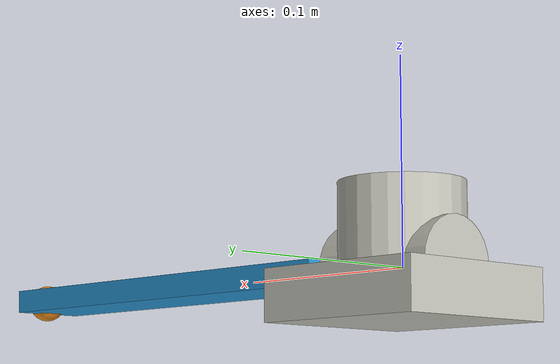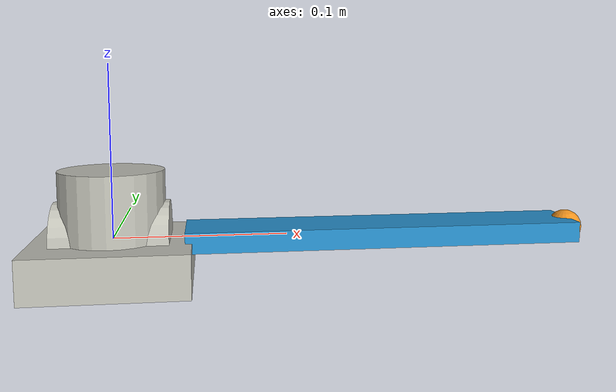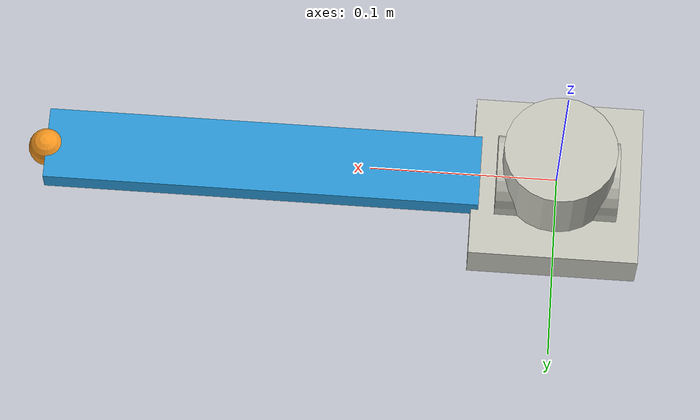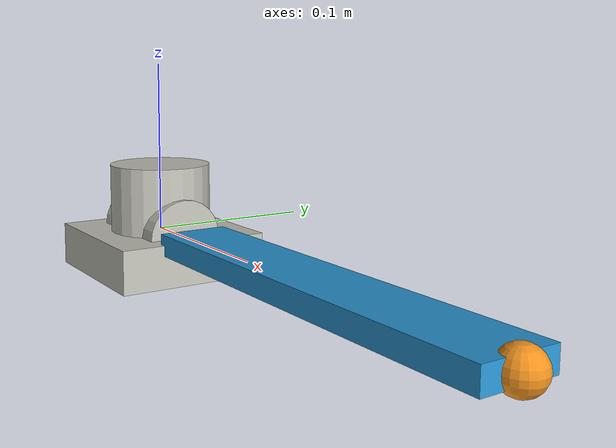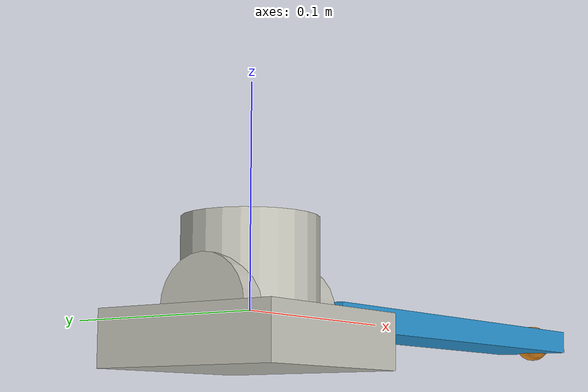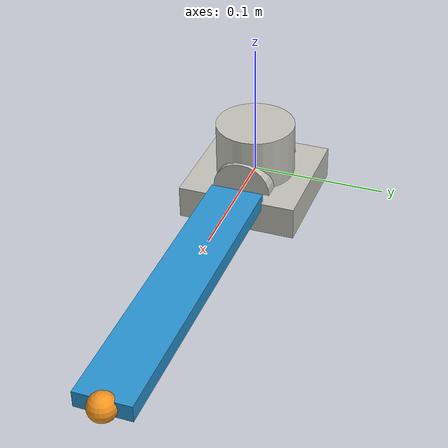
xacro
<?xml version="1.0"?>
<robot xmlns:xacro="http://www.ros.org/wiki/xacro" name="alphaf_p1_so101_one_link">
  <xacro:property name="L1_effective" value="0.274123"/>
  <xacro:property name="flexible_bar_length" value="0.233"/>
  <xacro:property name="bar_width" value="0.040"/>
  <xacro:property name="bar_thickness" value="0.012"/>
  <xacro:property name="adapter_offset" value="0.041123"/>
  <xacro:property name="bar_center_x" value="0.157623"/>

  <material name="alphaf_tpu">
    <color rgba="0.16 0.58 0.82 1.0"/>
  </material>
  <material name="alphaf_frame">
    <color rgba="0.76 0.76 0.72 1.0"/>
  </material>
  <material name="alphaf_marker">
    <color rgba="0.95 0.58 0.12 1.0"/>
  </material>

  <link name="p1_model_root"/>

  <joint name="p1_model_root_to_base_link" type="fixed">
    <origin xyz="0 0 0" rpy="0 0 0"/>
    <parent link="p1_model_root"/>
    <child link="base_link"/>
  </joint>

  <link name="base_link">
    <visual>
      <origin xyz="0 0 -0.0125" rpy="0 0 0"/>
      <geometry>
        <box size="0.090 0.090 0.025"/>
      </geometry>
      <material name="alphaf_frame"/>
    </visual>
    <collision>
      <origin xyz="0 0 -0.0125" rpy="0 0 0"/>
      <geometry>
        <box size="0.090 0.090 0.025"/>
      </geometry>
    </collision>
    <inertial>
      <origin xyz="0 0 -0.0125" rpy="0 0 0"/>
      <mass value="0.25"/>
      <inertia ixx="0.0002" ixy="0.0" ixz="0.0" iyy="0.0002" iyz="0.0" izz="0.0002"/>
    </inertial>
  </link>

  <link name="yaw_link">
    <visual>
      <origin xyz="0 0 0.020" rpy="0 0 0"/>
      <geometry>
        <cylinder radius="0.030" length="0.040"/>
      </geometry>
      <material name="alphaf_frame"/>
    </visual>
    <inertial>
      <origin xyz="0 0 0.020" rpy="0 0 0"/>
      <mass value="0.10"/>
      <inertia ixx="0.00005" ixy="0.0" ixz="0.0" iyy="0.00005" iyz="0.0" izz="0.00005"/>
    </inertial>
  </link>

  <joint name="joint_1_yaw" type="revolute">
    <origin xyz="0 0 0" rpy="0 0 0"/>
    <parent link="base_link"/>
    <child link="yaw_link"/>
    <axis xyz="0 0 1"/>
    <limit lower="-1.57079632679" upper="1.57079632679" effort="5.0" velocity="2.0"/>
  </joint>

  <link name="pitch_link">
    <visual>
      <origin xyz="0 0 0" rpy="0 1.57079632679 0"/>
      <geometry>
        <cylinder radius="0.022" length="0.065"/>
      </geometry>
      <material name="alphaf_frame"/>
    </visual>
    <inertial>
      <origin xyz="0 0 0" rpy="0 0 0"/>
      <mass value="0.10"/>
      <inertia ixx="0.00005" ixy="0.0" ixz="0.0" iyy="0.00005" iyz="0.0" izz="0.00005"/>
    </inertial>
  </link>

  <joint name="joint_2_pitch" type="revolute">
    <origin xyz="0 0 0" rpy="0 0 0"/>
    <parent link="yaw_link"/>
    <child link="pitch_link"/>
    <axis xyz="0 -1 0"/>
    <limit lower="0.0" upper="1.57079632679" effort="5.0" velocity="2.0"/>
  </joint>

  <link name="link_1_custom">
    <visual>
      <origin xyz="${bar_center_x} 0 0" rpy="0 0 0"/>
      <geometry>
        <box size="${flexible_bar_length} ${bar_width} ${bar_thickness}"/>
      </geometry>
      <material name="alphaf_tpu"/>
    </visual>
    <collision>
      <origin xyz="${bar_center_x} 0 0" rpy="0 0 0"/>
      <geometry>
        <box size="${flexible_bar_length} ${bar_width} ${bar_thickness}"/>
      </geometry>
    </collision>
    <inertial>
      <origin xyz="${bar_center_x} 0 0" rpy="0 0 0"/>
      <mass value="0.08"/>
      <inertia ixx="0.00001" ixy="0.0" ixz="0.0" iyy="0.00045" iyz="0.0" izz="0.00045"/>
    </inertial>
  </link>

  <joint name="link_1_custom_mount" type="fixed">
    <origin xyz="0 0 0" rpy="0 0 0"/>
    <parent link="pitch_link"/>
    <child link="link_1_custom"/>
  </joint>

  <link name="link1_tip">
    <visual>
      <origin xyz="0 0 0" rpy="0 0 0"/>
      <geometry>
        <sphere radius="0.010"/>
      </geometry>
      <material name="alphaf_marker"/>
    </visual>
  </link>

  <joint name="link1_tip_joint" type="fixed">
    <origin xyz="${L1_effective} 0 0" rpy="0 0 0"/>
    <parent link="link_1_custom"/>
    <child link="link1_tip"/>
  </joint>

  <link name="tool0"/>

  <joint name="tool0_joint" type="fixed">
    <origin xyz="0 0 0" rpy="0 0 0"/>
    <parent link="link1_tip"/>
    <child link="tool0"/>
  </joint>
</robot>
